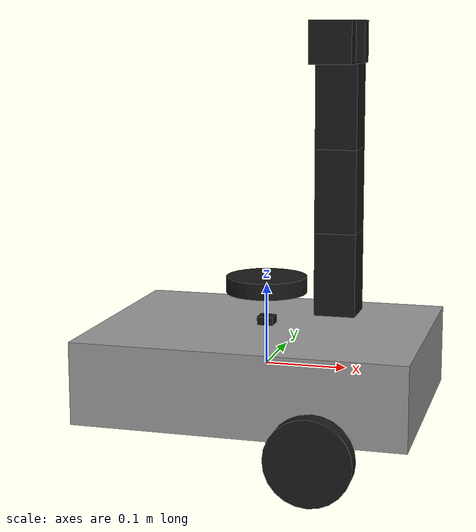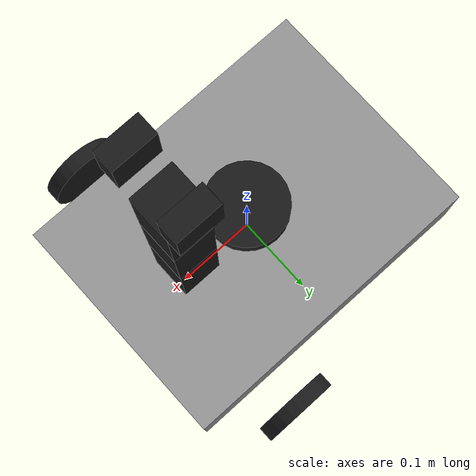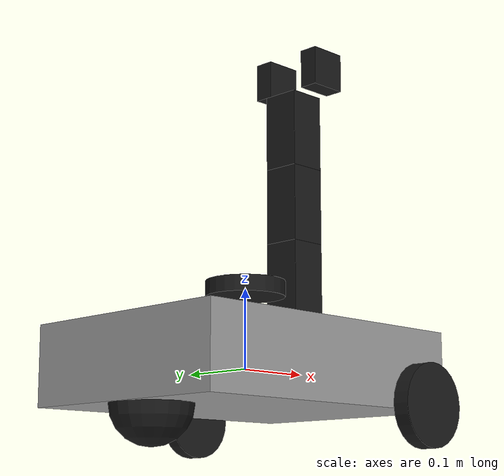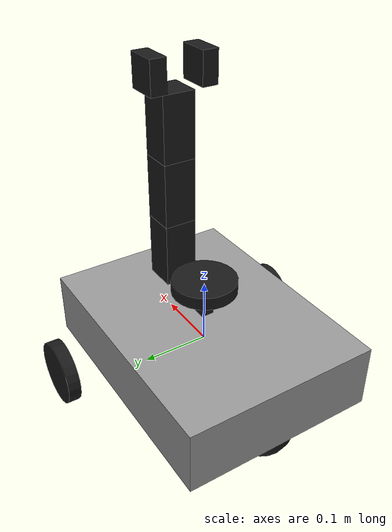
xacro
<?xml version="1.0"?>
<robot name="bot_description"
    xmlns:xacro="http://ros.org/wiki/xacro">

    <!-- ===== MATERIALS ===== -->
    <material name="grey">
        <color rgba="0.6 0.6 0.6 1"/>
    </material>

    <material name="black">
        <color rgba="0.1 0.1 0.1 1"/>
    </material>

    <!-- ===== INERTIA MACRO ===== -->
    <xacro:macro name="inertia_box" params="mass x y z">
        <inertial>
            <origin xyz="0 0 0" rpy="0 0 0"/>
            <mass value="${mass}"/>
            <inertia
                ixx="${(1/12.0)*mass*(y*y + z*z)}"
                ixy="0.0"
                ixz="0.0"
                iyy="${(1/12.0)*mass*(x*x + z*z)}"
                iyz="0.0"
                izz="${(1/12.0)*mass*(x*x + y*y)}"/>
        </inertial>
    </xacro:macro>

    <xacro:macro name="inertia_cylinder_x" params="mass radius length">
      <inertial>
        <origin xyz="0 0 0" rpy="0 0 0"/>
        <mass value="${mass}"/>
        <inertia
          ixx="${0.5 * mass * radius * radius}"
          ixy="0.0" ixz="0.0"
          iyy="${1/12.0 * mass * (3 * radius * radius + length * length)}"
          iyz="0.0"
          izz="${1/12.0 * mass * (3 * radius * radius + length * length)}"/>
      </inertial>
    </xacro:macro>

    <xacro:macro name="inertia_sphere" params="mass radius">
        <inertial>
            <origin xyz="0 0 0" rpy="0 0 0"/>
            <mass value="${mass}"/>
            <inertia
                ixx="${(2/5.0)*mass*radius*radius}"
                ixy="0.0"
                ixz="0.0"
                iyy="${(2/5.0)*mass*radius*radius}"
                iyz="0.0"
                izz="${(2/5.0)*mass*radius*radius}"/>
        </inertial>
    </xacro:macro>

    <!-- Dummy root for KDL compatibility -->
    <link name="dummy_root"></link>

    <joint name="dummy_root_joint" type="fixed">
        <parent link="dummy_root"/>
        <child link="base_link"/>
        <origin xyz="0 0 0" rpy="0 0 0"/>
    </joint>

    <!-- ===== BASE LINK ===== -->
    <link name="base_link">
        <visual>
            <geometry>
                <box size="0.4 0.3 0.1"/>
            </geometry>
            <material name="grey"/>
        </visual>
        <collision>
            <geometry>
                <box size="0.4 0.3 0.1"/>
            </geometry>
        </collision>
        <xacro:inertia_box mass="2.0" x="0.4" y="0.3" z="0.1"/>
    </link>

    <!-- ===== WHEELS ===== -->
    <!-- Right Wheel -->
    <link name="right_wheel">
        <visual>
            <geometry>
                <cylinder length="0.02" radius="0.05"/>
            </geometry>
            <!-- Rotate cylinder so the spin axis is X -->
            <origin xyz="0 0 0" rpy="1.5708 0 0"/>
            <material name="black"/>
        </visual>
        <collision>
            <geometry>
                <cylinder length="0.02" radius="0.05"/>
            </geometry>
            <origin xyz="0 0 0" rpy="1.5708 0 0"/>
        </collision>
        <xacro:inertia_cylinder_x mass="0.2" radius="0.05" length="0.02"/>
    </link>

    <joint name="right_wheel_joint" type="continuous">
        <parent link="base_link"/>
        <child link="right_wheel"/>
        <!-- Push wheel farther out -->
        <origin xyz="0.1 -0.2 -0.05"/>
        <axis xyz="0 1 0"/>
    </joint>

    <!-- Left Wheel -->
    <link name="left_wheel">
        <visual>
            <geometry>
                <cylinder length="0.02" radius="0.05"/>
            </geometry>
            <origin xyz="0 0 0" rpy="1.5708 0 0"/>
            <material name="black"/>
        </visual>
        <collision>
            <geometry>
                <cylinder length="0.02" radius="0.05"/>
            </geometry>
            <origin xyz="0 0 0" rpy="1.5708 0 0"/>
        </collision>
        <xacro:inertia_cylinder_x mass="0.2" radius="0.05" length="0.02"/>
    </link>

    <joint name="left_wheel_joint" type="continuous">
        <parent link="base_link"/>
        <child link="left_wheel"/>
        <origin xyz="0.1 0.2 -0.05"/>
        <axis xyz="0 1 0"/>
    </joint>

    <!-- ===== CASTER WHEEL ===== -->
    <link name="caster_wheel">
        <visual>
            <geometry>
                <sphere radius="0.05"/>
            </geometry>
            <material name="black"/>
        </visual>
        <collision>
            <geometry>
                <sphere radius="0.05"/>
            </geometry>
        </collision>
        <xacro:inertia_sphere mass="0.1" radius="0.05"/>
    </link>

    <joint name="caster_wheel_joint" type="fixed">
        <parent link="base_link"/>
        <child link="caster_wheel"/>
        <origin xyz="-0.15 0 -0.05"/>
    </joint>

    <!-- ===== LIDAR ===== -->
    <link name="lidar_link">
        <visual>
            <geometry>
                <cylinder length="0.02" radius="0.05"/>
            </geometry>
            <origin xyz="0 0 0" rpy="0 0 0"/>
            <material name="black"/>
        </visual>
        <collision>
            <geometry>
                <cylinder length="0.02" radius="0.05"/>
            </geometry>
            <origin xyz="0 0 0" rpy="0 0 0"/>
        </collision>
        <xacro:inertia_cylinder_x mass="0.1" radius="0.05" length="0.02"/>
        </link>

    <joint name="lidar_joint" type="fixed">
        <parent link="base_link"/>
        <child link="lidar_link"/>
        <origin xyz="0.0 0 0.1"/>
    </joint>

    <!-- ===== IMU ===== -->
    <link name="imu_link">
        <visual>
            <geometry>
                <box size="0.02 0.02 0.02"/>
            </geometry>
            <material name="black"/>
        </visual>
        <collision>
            <geometry>
                <box size="0.02 0.02 0.02"/>
            </geometry>
        </collision>
        <xacro:inertia_box mass="0.05" x="0.02" y="0.02" z="0.02"/>
    </link>

    <joint name="imu_joint" type="fixed">
        <parent link="base_link"/>
        <child link="imu_link"/>
        <origin xyz="0.0 0 0.05"/>
    </joint>

    <!-- ===== 3DOF ARM ===== -->

    <!-- Arm Base -->
    <link name="arm_base">
        <visual>
            <geometry>
                <box size="0.05 0.05 0.1"/>
            </geometry>
            <!-- Centered vertically -->
            <origin xyz="-0.01 0 0.05"/>
            <material name="black"/>
        </visual>
        <collision>
            <geometry>
                <box size="0.05 0.05 0.1"/>
            </geometry>
            <origin xyz="-0.01 0 0.05"/>
        </collision>
        <xacro:inertia_box mass="0.3" x="0.05" y="0.05" z="0.1"/>
    </link>

    <joint name="arm_base_joint" type="revolute">
        <parent link="base_link"/>
        <child link="arm_base"/>
        <origin xyz="0.1 0 0.07"/>
        <axis xyz="0 1 0"/>
        <limit lower="0" upper="1.5708" effort="10" velocity="1"/>
    </joint>

    <!-- Arm Link 1 -->
    <link name="arm_link1">
        <visual>
            <geometry>
                <box size="0.05 0.05 0.1"/>
            </geometry>
            <origin xyz="-0.01 0 0.05"/>
            <material name="black"/>
        </visual>
        <collision>
            <geometry>
                <box size="0.05 0.05 0.1"/>
            </geometry>
            <origin xyz="-0.01 0 0.05"/>
        </collision>
        <xacro:inertia_box mass="0.3" x="0.05" y="0.05" z="0.1"/>
    </link>

    <joint name="arm_link1_joint" type="revolute">
        <parent link="arm_base"/>
        <child link="arm_link1"/>
        <!-- Connects to top of arm_base -->
        <origin xyz="0 0 0.1"/>
        <axis xyz="0 1 0"/>
        <limit lower="0" upper="1.5708" effort="10" velocity="1"/>
    </joint>

    <!-- Arm Link 2 -->
    <link name="arm_link2">
        <visual>
            <geometry>
                <box size="0.05 0.05 0.1"/>
            </geometry>
            <origin xyz="-0.01 0 0.05"/>
            <material name="black"/>
        </visual>
        <collision>
            <geometry>
                <box size="0.05 0.05 0.1"/>
            </geometry>
            <origin xyz="-0.01 0 0.05"/>
        </collision>
        <xacro:inertia_box mass="0.3" x="0.05" y="0.05" z="0.1"/>
    </link>

    <joint name="arm_link2_joint" type="revolute">
        <parent link="arm_link1"/>
        <child link="arm_link2"/>
        <!-- Connects to top of arm_link1 -->
        <origin xyz="0 0 0.1"/>
        <axis xyz="0 1 0"/>
        <limit lower="0" upper="1.5708" effort="10" velocity="1"/>
    </joint>

    <!-- End Effector -->
    <link name="arm_end_effector_right">
        <visual>
            <geometry>
                <box size="0.05 0.025 0.05"/>
            </geometry>
            <origin xyz="-0.01 -0.05 0.025"/>
            <material name="black"/>
        </visual>
        <collision>
            <geometry>
                <box size="0.05 0.025 0.05"/>
            </geometry>
            <origin xyz="-0.01 -0.05 0.025"/>
        </collision>
        <xacro:inertia_box mass="0.05" x="0.05" y="0.025" z="0.05"/>
    </link>

    <joint name="arm_end_effector_joint_right" type="prismatic">
        <parent link="arm_link2"/>
        <child link="arm_end_effector_right"/>
        <origin xyz="0 0 0.1"/>
        <axis xyz="0 1 0"/>
        <limit lower="0" upper="0.05" effort="10" velocity="1"/>
    </joint>

    <link name="arm_end_effector_left">
        <visual>
            <geometry>
                <box size="0.05 0.025 0.05"/>
            </geometry>
            <origin xyz="-0.01 0.03 0.025"/>
            <material name="black"/>
        </visual>
        <collision>
            <geometry>
                <box size="0.05 0.025 0.05"/>
            </geometry>
            <origin xyz="-0.01 0.03 0.025"/>
        </collision>
        <xacro:inertia_box mass="0.05" x="0.05" y="0.025" z="0.05"/>
    </link>

    <joint name="arm_end_effector_joint_left" type="fixed">
        <parent link="arm_link2"/>
        <child link="arm_end_effector_left"/>
        <origin xyz="0 0 0.1"/>
    </joint>

    <!-- ROS2 Control -->
    <ros2_control name="GazeboArmController" type="system">
        <hardware>
            <plugin>gz_ros2_control/GzSystem</plugin>
        </hardware>
        <joint name="arm_base_joint">
            <command_interface name="position"/>
            <state_interface name="position"/>
            <state_interface name="velocity"/>
            <state_interface name="effort"/>
        </joint>
        <joint name="arm_link1_joint">
            <command_interface name="position"/>
            <state_interface name="position"/>
            <state_interface name="velocity"/>
            <state_interface name="effort"/>
        </joint>
        <joint name="arm_link2_joint">
            <command_interface name="position"/>
            <state_interface name="position"/>
            <state_interface name="velocity"/>
            <state_interface name="effort"/>
        </joint>
        <joint name="arm_end_effector_joint_right">
            <command_interface name="position"/>
            <state_interface name="position"/>
            <state_interface name="velocity"/>
            <state_interface name="effort"/>
        </joint>
    </ros2_control>

    <!-- Plugins -->

</robot>
